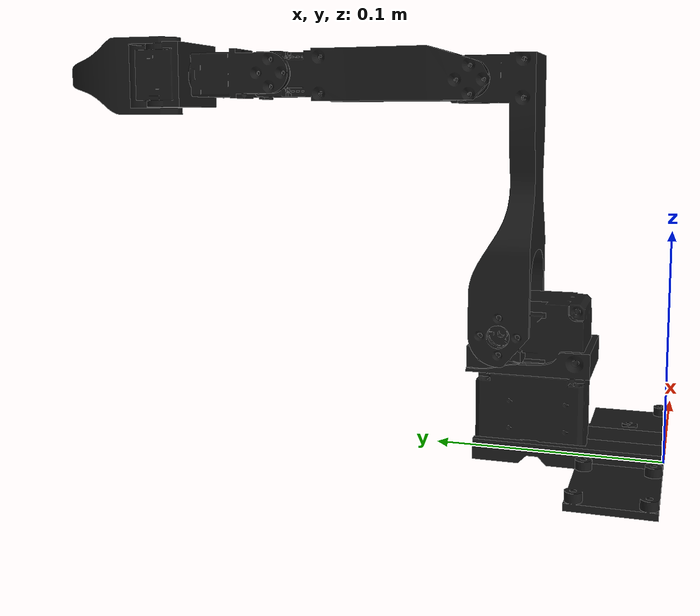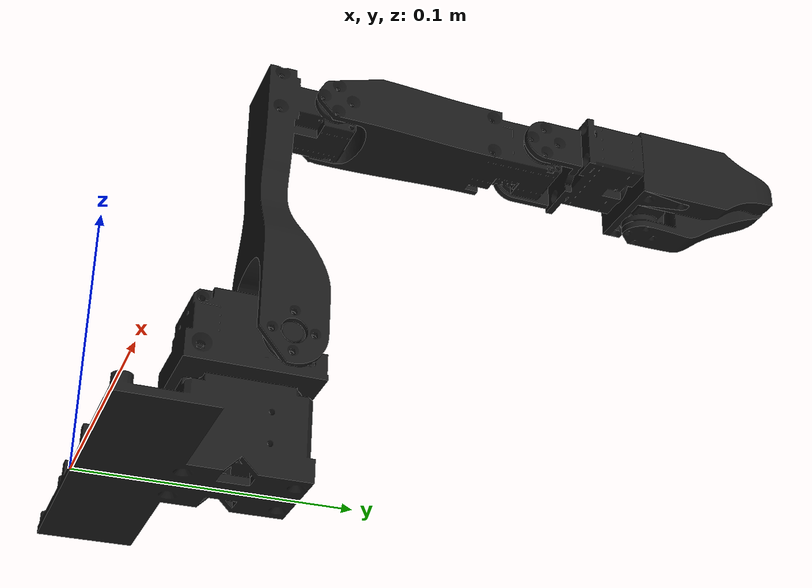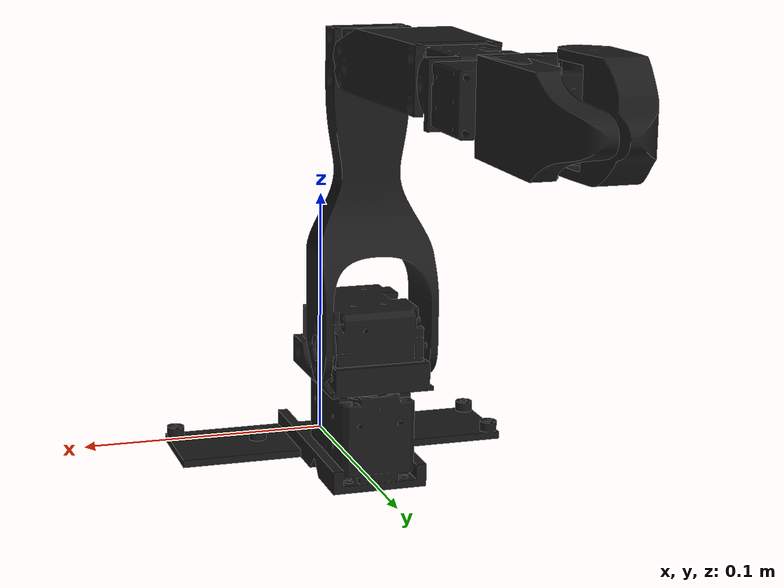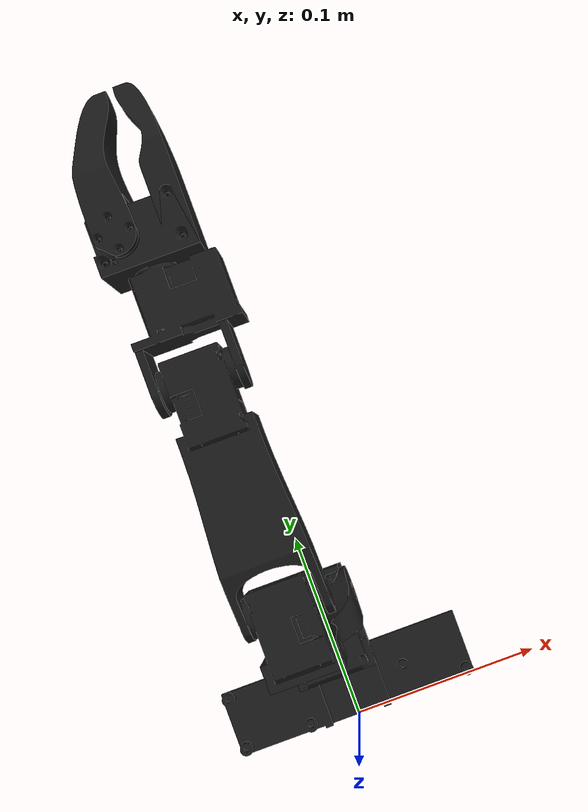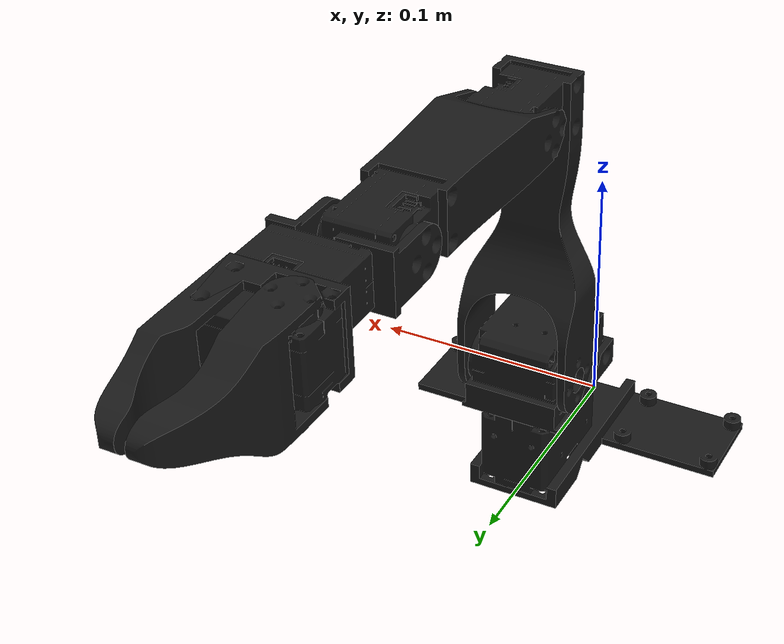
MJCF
<mujoco model="low_cost_robot">
    <compiler angle="radian" meshdir="assets" texturedir="assets" autolimits="true"/>
    <!-- The timestep has a big influence on the contacts stability -->
    <option cone="elliptic" impratio="10" timestep="0.001"/>
    <asset>
        <mesh file="base_link.stl" scale="0.001 0.001 0.001"/>
        <mesh file="first-bracket-motor_1.stl" scale="0.001 0.001 0.001"/>
        <mesh file="shoulder-to-elbow-motor_v1_1.stl" scale="0.001 0.001 0.001"/>
        <mesh file="elbow-to-wrist-motor-reference_v1_1.stl" scale="0.001 0.001 0.001"/>
        <mesh file="elbow_to_wrist_with_motor.stl" scale="0.001 0.001 0.001"/>
        <mesh file="gripper-static-motor-pt1.stl" scale="0.001 0.001 0.001"/>
        <mesh file="gripper-static-motor-pt2.stl" scale="0.001 0.001 0.001"/>
        <mesh file="gripper-moving-part-dumb_v2_1.stl" scale="0.001 0.001 0.001"/>
    </asset>
    <default>
        <default class="low_cost_robot">
            <general biastype="affine"/>
            <joint axis="0 1 0"/>
            <default class="joint1">
                <joint axis="0 0 1" range="-3.14158 3.14158" damping="0.5"/>
                <position ctrlrange="-3.14158 3.14158" kp="50"/>
            </default>
            <default class="joint2">
                <joint axis="1 0 0" range="-3.14158 3.14158" damping="0.5"/>
                <position ctrlrange="-3.14158 3.14158" kp="10"/>
            </default>
            <default class="joint3">
                <joint axis="1 0 0" range="-3.14158 3.14158" damping="0.5"/>
                <position ctrlrange="-3.14158 3.14158" kp="10"/>
            </default>
            <default class="joint4">
                <joint axis="1 0 0" range="-3.14158 3.14158" damping="0.5"/>
                <position ctrlrange="-3.14158 3.14158" kp="10"/>
            </default>
            <default class="joint5">
                <joint axis="0 -1 0" range="-3.14158 3.14158" damping="0.5"/>
                <position ctrlrange="-3.14158 3.14158" kp="10"/>
            </default>
            <default class="joint6">
                <joint axis="0 0 -1" range="-2.45 0.032" damping="0.5"/>
                <position ctrlrange="-1.52 0.032" kp="10"/>
            </default>
        </default>
    </default>
    <worldbody>
        <body name="base_link" pos="0 0 0">
            <geom type="mesh" name="base_link" mesh="base_link" rgba="0.1 0.1 0.1 1"/>
            <body name="joint1" pos="0 0.07 0.0">
                <joint name="joint1" axis="0 0 1" pos="0 0 0" class="joint1"/>
                <geom type="mesh" name="joint1" pos="0 -0.07 0" mesh="first-bracket-motor_1" rgba="0.1 0.1 0.1 1"/>
                <body name="joint2" pos="0 0 0.055">
                    <joint name="joint2" axis="1 0 0" class="joint2"/>
                    <geom type="mesh" pos="0 -0.07 -0.055" name="joint2" mesh="shoulder-to-elbow-motor_v1_1" rgba="0.1 0.1 0.1 1"/>
                    <body name="joint3" pos="0.0 0.0135 0.108">
                        <joint name="joint3" axis="1 0 0" class="joint3"/>
                        <geom pos="-0.0138 -0.0075 -0.0141" type="mesh" name="joint3" mesh="elbow_to_wrist_with_motor" rgba="0.1 0.1 0.1 1"/>
                        <body name="joint4" pos="0 0.091 0.0035">
                            <joint name="joint4" class="joint4"/>
                            <geom pos="0 -0.084 -0.163" type="mesh" name="joint4" mesh="elbow-to-wrist-motor-reference_v1_1" rgba="0.1 0.1 0.1 1"/>
                            <body name="joint5" pos="0 0.04 0">
                                <joint name="joint5" class="joint5"/>
                                <geom pos="0 -0.125 -0.163" type="mesh" name="joint5-pt1" mesh="gripper-static-motor-pt1" rgba="0.1 0.1 0.1 1"/>
                                <geom pos="0 -0.125 -0.163" type="mesh" name="joint5" mesh="gripper-static-motor-pt2" rgba="0.1 0.1 0.1 1" contype="0" conaffinity="0"/>
                                <body name="joint5-pad">
                                    <geom type="box" condim="3" friction="0.7" mass="0.01" solimp="0.95 0.99 0.001" solref="0.004 1" name="static_finger_pad" size="0.006 0.006 0.006" pos="0.0135 0.07 0.0" priority="1" rgba="0 0 0.8 0"/>
                                </body>

                                <body name="joint6" pos="0 0 0">
                                    <joint pos="-0.009 0.0165 0" name="joint6" class="joint6"/>
                                    <geom pos="0 -0.125 -0.163" type="mesh" name="joint6" mesh="gripper-moving-part-dumb_v2_1" rgba="0.1 0.1 0.1 1" contype="0" conaffinity="0"/>
                                    <body name="joint6-pad">
                                        <geom type="box" condim="3" friction="0.7" mass="0.01" solimp="0.95 0.99 0.001" solref="0.004 1" name="moving_finger_pad" size="0.006 0.006 0.006" pos="0 0.07 0" euler="0 0 -0.3" priority="1" rgba="0 0 0.8 0"/>
                                    </body>
                                </body>
                            </body>
                        </body>
                    </body>
                </body>
            </body>
        </body>
    </worldbody>
    <actuator>
        <position class="joint1" name="joint1" joint="joint1"/>
        <position class="joint2" name="joint2" joint="joint2"/>
        <position class="joint3" name="joint3" joint="joint3"/>
        <position class="joint4" name="joint4" joint="joint4"/>
        <position class="joint5" name="joint5" joint="joint5"/>
        <position class="joint6" name="joint6" joint="joint6"/>
    </actuator>
</mujoco>
